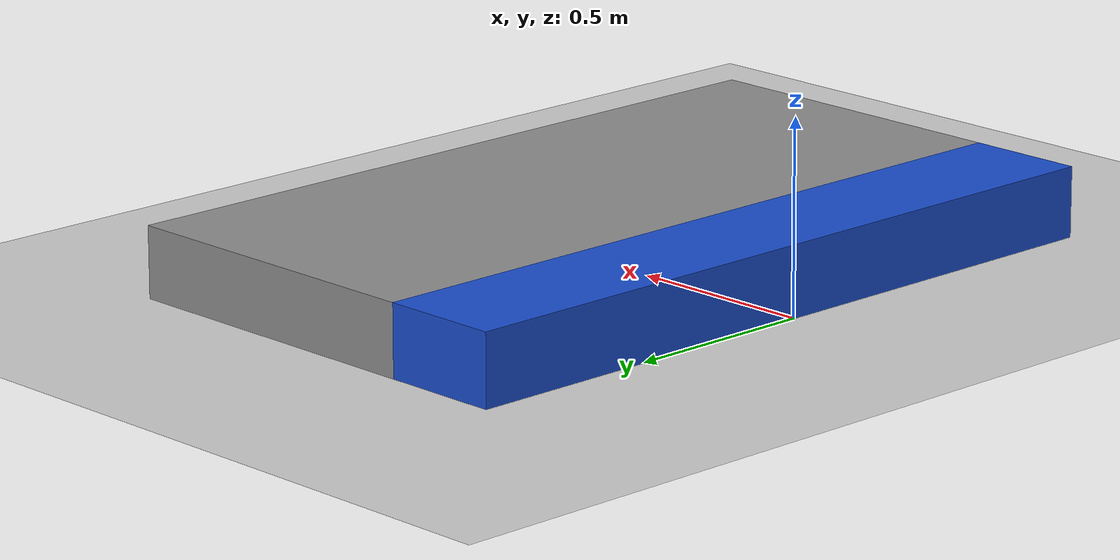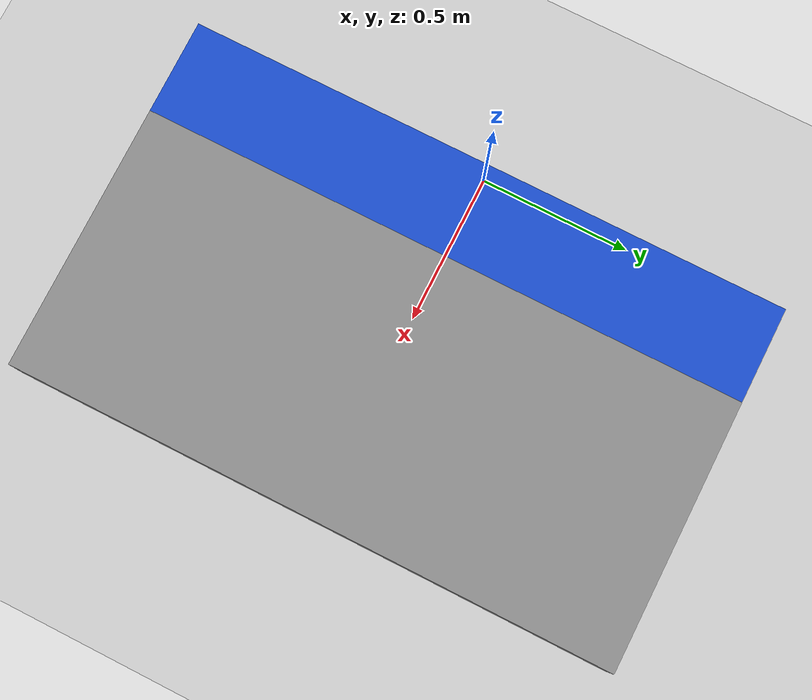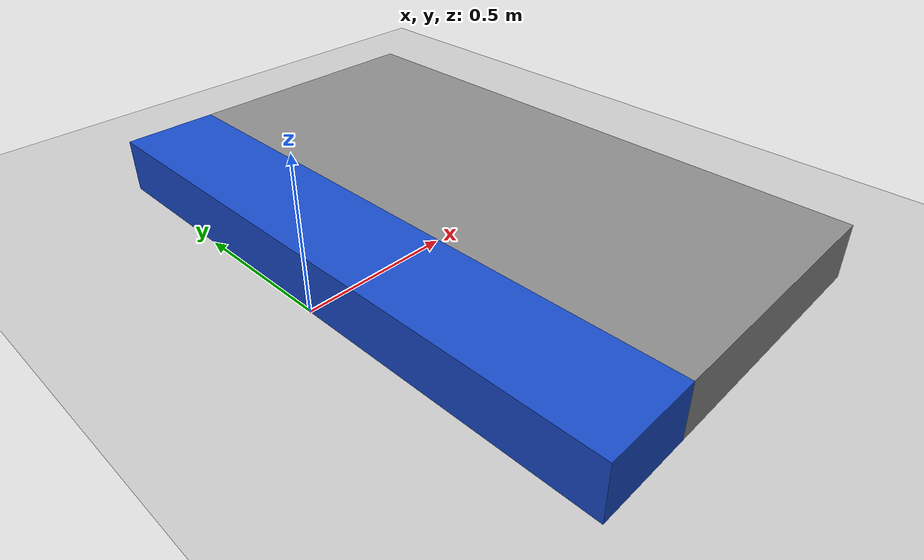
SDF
<?xml version="1.0" ?>

<sdf version="1.9">

  <world name="lite3_single_step">

    <!-- Physics                                                -->

    <physics name="1ms"
             type="ode">

      <max_step_size>0.001</max_step_size>

      <real_time_update_rate>
        1000
      </real_time_update_rate>

    </physics>

    <gravity>
      0 0 -9.81
    </gravity>

    <!-- Scene                                                  -->

    <scene>

      <ambient>
        0.4 0.4 0.4 1
      </ambient>

      <background>
        0.7 0.7 0.7 1
      </background>

    </scene>

    <!-- Light                                                   -->

    <light
      name="sun"
      type="directional">

      <cast_shadows>true</cast_shadows>

      <pose>
        0 0 5 0 0 0
      </pose>

      <diffuse>
        1 1 1 1
      </diffuse>

      <specular>
        0.2 0.2 0.2 1
      </specular>

      <direction>
        -0.3 -0.2 -1
      </direction>

    </light>

    <!-- Lower ground                                            -->

    <model name="ground">

      <static>true</static>

      <link name="ground_link">

        <collision name="ground_collision">

          <geometry>

            <plane>

              <normal>
                0 0 1
              </normal>

              <size>
                20 10
              </size>

            </plane>

          </geometry>

          <surface>

            <friction>

              <ode>

                <mu>1.0</mu>
                <mu2>1.0</mu2>

              </ode>

            </friction>

          </surface>

        </collision>

        <visual name="ground_visual">

          <geometry>

            <plane>

              <normal>
                0 0 1
              </normal>

              <size>
                20 10
              </size>

            </plane>

          </geometry>

        </visual>

      </link>

    </model>

    <!-- One step                                                -->
    <!-- Height = 0.185 m                                       -->
    <!-- Tread  = 0.315 m                                       -->

    <model name="step_01">

      <static>true</static>

      <pose>
        0.1575 0 0.0925 0 0 0
      </pose>

      <link name="step_link">

        <collision name="step_collision">

          <geometry>

            <box>

              <size>
                0.315 2.00 0.185
              </size>

            </box>

          </geometry>

          <surface>

            <friction>

              <ode>

                <mu>1.0</mu>
                <mu2>1.0</mu2>

              </ode>

            </friction>

          </surface>

        </collision>

        <visual name="step_visual">

          <geometry>

            <box>

              <size>
                0.315 2.00 0.185
              </size>

            </box>

          </geometry>

          <material>

    <ambient>0.1 0.3 0.8 1</ambient>
    <diffuse>0.1 0.3 0.8 1</diffuse>
    <specular>0.2 0.2 0.2 1</specular>

  </material>

        </visual>

      </link>

    </model>

    <!-- Upper landing                                           -->

    <model name="top_landing">

      <static>true</static>

      <pose>
        0.7575 0 0.0925 0 0 0
      </pose>

      <link name="landing_link">

        <collision name="landing_collision">

          <geometry>

            <box>

              <size>
                0.885 2.00 0.185
              </size>

            </box>

          </geometry>

          <surface>

            <friction>

              <ode>

                <mu>1.0</mu>
                <mu2>1.0</mu2>

              </ode>

            </friction>

          </surface>

        </collision>

        <visual name="landing_visual">

          <geometry>

            <box>

              <size>
                0.885 2.00 0.185
              </size>

            </box>

          </geometry>

           <material>

    <ambient>0.45 0.45 0.45 1</ambient>
    <diffuse>0.55 0.55 0.55 1</diffuse>
    <specular>0.2 0.2 0.2 1</specular>

  </material>

        </visual>

      </link>

    </model>

  </world>

</sdf>
